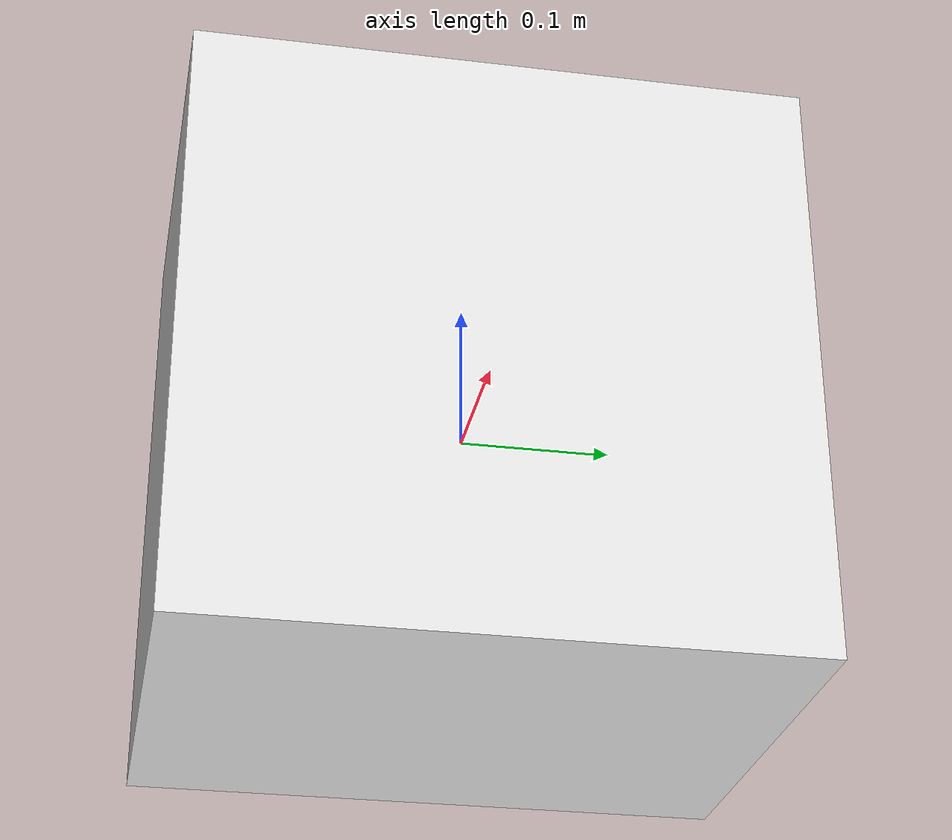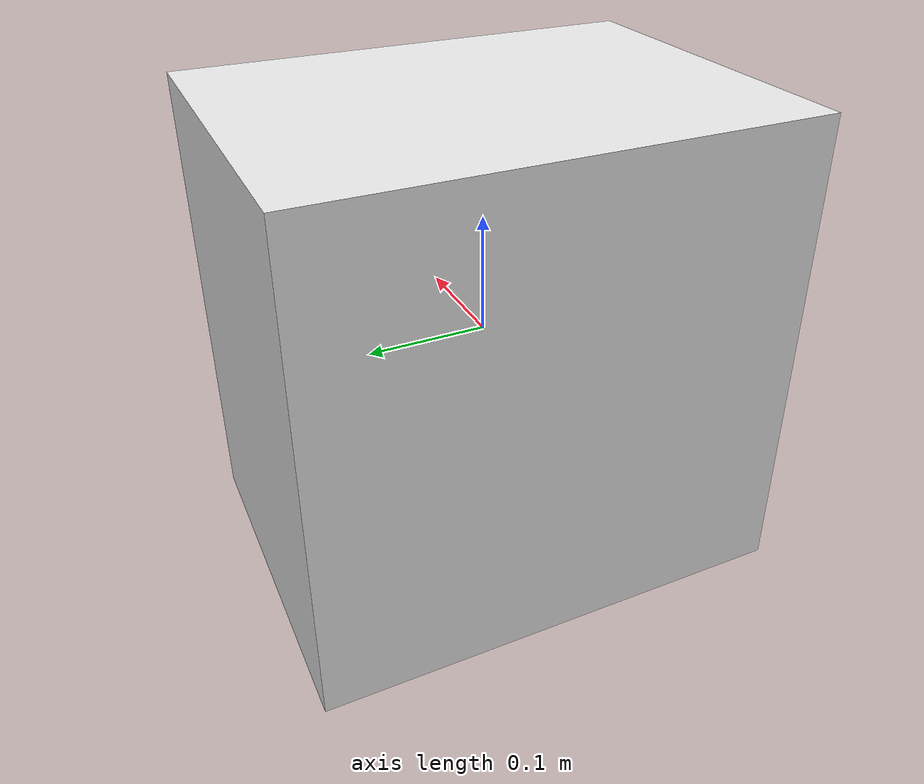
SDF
<?xml version="1.0"?>
<sdf version="1.7">
  <model name="large_box">
    <!-- The model for a solid box of uniform density. -->
    <link name="box">
      <inertial>
        <mass>5.0</mass>
        <inertia>
          <ixx>0.13333333333333336</ixx>
          <ixy>0</ixy>
          <ixz>0</ixz>
          <iyy>0.10416666666666666</iyy>
          <iyz>0</iyz>
          <izz>0.10416666666666666</izz>
        </inertia>
      </inertial>

      <visual name="box_visual">
        <geometry>
          <box>
            <size>0.30 0.40 0.40</size>
          </box>
        </geometry>
        <material>
          <diffuse>0.9 0.9 0.9 0.9</diffuse>
        </material>
      </visual>

      <collision name="collision">
        <geometry>
          <box>
            <size>0.30 0.40 0.40</size>
          </box>
        </geometry>
        <surface>
          <friction>
            <ode>
              <mu>0.5</mu>
              <mu2>0.5</mu2>
            </ode>
          </friction>
        </surface>
      </collision>

      <collision name="minus_x_lower_left_corner">
        <pose> -0.15 -0.20 -0.20 0 0 0</pose>
        <geometry>
          <sphere>
            <radius>1e-7</radius>
          </sphere>
        </geometry>
        <surface>
          <friction>
            <ode>
              <mu>0.5</mu>
              <mu2>0.5</mu2>
            </ode>
          </friction>
        </surface>
      </collision>

      <collision name="minus_x_lower_right_corner">
        <pose> 0.15 -0.20 -0.20 0 0 0</pose>
        <geometry>
          <sphere>
            <radius>1e-7</radius>
          </sphere>
        </geometry>
        <surface>
          <friction>
            <ode>
              <mu>0.5</mu>
              <mu2>0.5</mu2>
            </ode>
          </friction>
        </surface>
      </collision>

      <collision name="plus_x_lower_left_corner">
        <pose> -0.15 0.20 -0.20 0 0 0</pose>
        <geometry>
          <sphere>
            <radius>1e-7</radius>
          </sphere>
        </geometry>
        <surface>
          <friction>
            <ode>
              <mu>0.5</mu>
              <mu2>0.5</mu2>
            </ode>
          </friction>
        </surface>
      </collision>

      <collision name="plus_x_lower_right_corner">
        <pose> 0.15 0.20 -0.20 0 0 0</pose>
        <geometry>
          <sphere>
            <radius>1e-7</radius>
          </sphere>
        </geometry>
        <surface>
          <friction>
            <ode>
              <mu>0.5</mu>
              <mu2>0.5</mu2>
            </ode>
          </friction>
        </surface>
      </collision>

    </link>
  </model>
</sdf>
